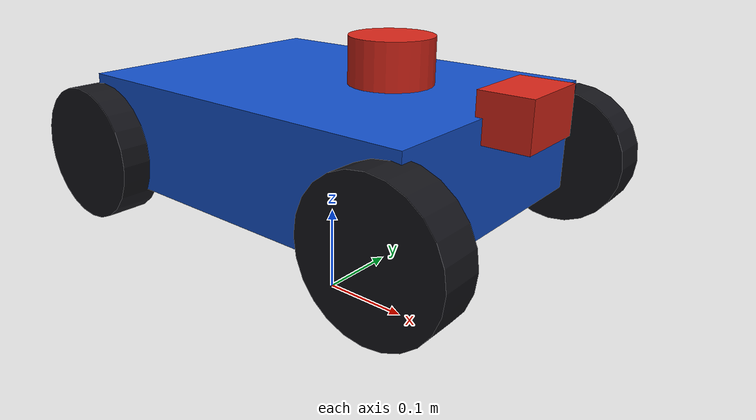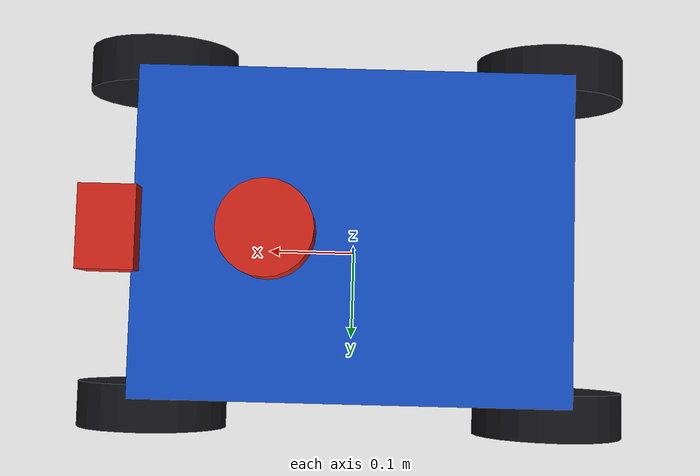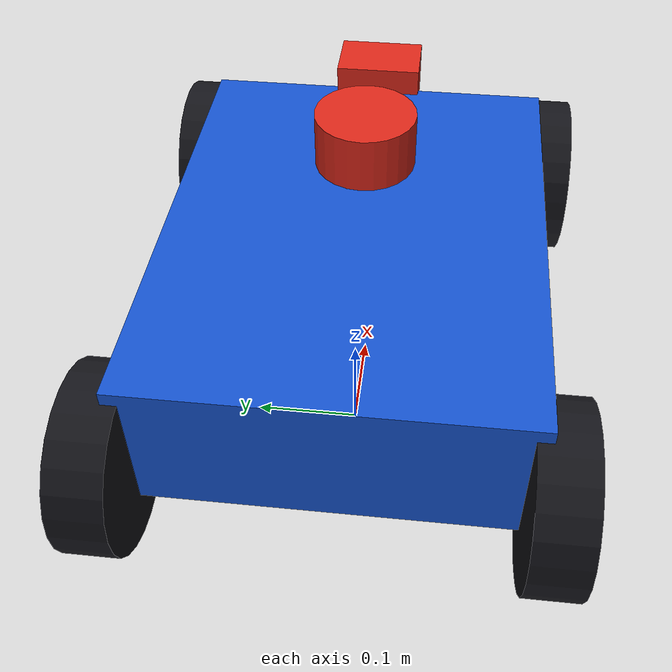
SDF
<?xml version="1.0"?>
<sdf version="1.9">
  <model name="mecamind_mecanum">
    <!-- 与轻量仿真一致，出生在地图原点，便于共用建图路线 -->
    <pose>0 0 0.10 0 0 0</pose>
    <self_collide>false</self_collide>

    <!-- 底盘：0.42 x 0.32 x 0.12 m 的盒子，质量 8kg。
         inertial 的惯量矩阵影响旋转动力学，值按均匀盒子近似估算。 -->
    <link name="base_link">
      <inertial>
        <mass>8.0</mass>
        <inertia>
          <ixx>0.08</ixx><iyy>0.12</iyy><izz>0.16</izz>
          <ixy>0</ixy><ixz>0</ixz><iyz>0</iyz>
        </inertia>
      </inertial>
      <collision name="base_collision">
        <pose>0 0 0.10 0 0 0</pose>
        <geometry><box><size>0.42 0.32 0.12</size></box></geometry>
      </collision>
      <visual name="base_visual">
        <pose>0 0 0.10 0 0 0</pose>
        <geometry><box><size>0.42 0.32 0.12</size></box></geometry>
        <material><diffuse>0.08 0.32 0.80 1</diffuse><ambient>0.05 0.20 0.50 1</ambient></material>
      </visual>
    </link>

    <link name="front_left_wheel">
      <pose>0.20 0.17 0.075 0 0 0</pose>
      <inertial><mass>0.35</mass><inertia><ixx>0.001</ixx><iyy>0.001</iyy><izz>0.001</izz></inertia></inertial>
      <visual name="visual">
        <!-- 圆柱默认轴向朝 z，绕 x 转 90°（1.5708 rad）让轮子立起来 -->
        <pose>0 0 0 1.5708 0 0</pose>
        <geometry><cylinder><radius>0.075</radius><length>0.045</length></cylinder></geometry>
        <material><diffuse>0.08 0.08 0.10 1</diffuse></material>
      </visual>
      <collision name="collision">
        <geometry><sphere><radius>0.075</radius></sphere></geometry>
        <surface><friction><ode><mu>1.0</mu><mu2>0.0</mu2><fdir1 gz:expressed_in="base_link">1 -1 0</fdir1></ode></friction></surface>
      </collision>
    </link>

    <link name="front_right_wheel">
      <pose>0.20 -0.17 0.075 0 0 0</pose>
      <inertial><mass>0.35</mass><inertia><ixx>0.001</ixx><iyy>0.001</iyy><izz>0.001</izz></inertia></inertial>
      <visual name="visual">
        <pose>0 0 0 1.5708 0 0</pose>
        <geometry><cylinder><radius>0.075</radius><length>0.045</length></cylinder></geometry>
        <material><diffuse>0.08 0.08 0.10 1</diffuse></material>
      </visual>
      <collision name="collision">
        <geometry><sphere><radius>0.075</radius></sphere></geometry>
        <surface><friction><ode><mu>1.0</mu><mu2>0.0</mu2><fdir1 gz:expressed_in="base_link">1 1 0</fdir1></ode></friction></surface>
      </collision>
    </link>

    <link name="rear_left_wheel">
      <pose>-0.20 0.17 0.075 0 0 0</pose>
      <inertial><mass>0.35</mass><inertia><ixx>0.001</ixx><iyy>0.001</iyy><izz>0.001</izz></inertia></inertial>
      <visual name="visual">
        <pose>0 0 0 1.5708 0 0</pose>
        <geometry><cylinder><radius>0.075</radius><length>0.045</length></cylinder></geometry>
        <material><diffuse>0.08 0.08 0.10 1</diffuse></material>
      </visual>
      <collision name="collision">
        <geometry><sphere><radius>0.075</radius></sphere></geometry>
        <surface><friction><ode><mu>1.0</mu><mu2>0.0</mu2><fdir1 gz:expressed_in="base_link">1 1 0</fdir1></ode></friction></surface>
      </collision>
    </link>

    <link name="rear_right_wheel">
      <pose>-0.20 -0.17 0.075 0 0 0</pose>
      <inertial><mass>0.35</mass><inertia><ixx>0.001</ixx><iyy>0.001</iyy><izz>0.001</izz></inertia></inertial>
      <visual name="visual">
        <pose>0 0 0 1.5708 0 0</pose>
        <geometry><cylinder><radius>0.075</radius><length>0.045</length></cylinder></geometry>
        <material><diffuse>0.08 0.08 0.10 1</diffuse></material>
      </visual>
      <collision name="collision">
        <geometry><sphere><radius>0.075</radius></sphere></geometry>
        <surface><friction><ode><mu>1.0</mu><mu2>0.0</mu2><fdir1 gz:expressed_in="base_link">1 -1 0</fdir1></ode></friction></surface>
      </collision>
    </link>

    <!-- 轮关节：revolute（旋转）关节，转轴沿 y（车身左右方向），
         即普通轮子的滚动轴。驱动插件通过这些关节给轮子施加转速。 -->
    <joint name="front_left_wheel_joint" type="revolute">
      <parent>base_link</parent><child>front_left_wheel</child>
      <axis><xyz>0 1 0</xyz></axis>
    </joint>
    <joint name="front_right_wheel_joint" type="revolute">
      <parent>base_link</parent><child>front_right_wheel</child>
      <axis><xyz>0 1 0</xyz></axis>
    </joint>
    <joint name="rear_left_wheel_joint" type="revolute">
      <parent>base_link</parent><child>rear_left_wheel</child>
      <axis><xyz>0 1 0</xyz></axis>
    </joint>
    <joint name="rear_right_wheel_joint" type="revolute">
      <parent>base_link</parent><child>rear_right_wheel</child>
      <axis><xyz>0 1 0</xyz></axis>
    </joint>

    <!-- 2D 激光雷达：360 束、覆盖 ±180°、量程 0.12~8m、10Hz。
         gz_frame_id 必须与 URDF 中的 TF frame 名一致（lidar_link），
         否则 SLAM 无法把激光点换算到底盘坐标系。
         noise 给测距加 0.005m 高斯噪声，模拟真实雷达。 -->
    <link name="lidar_link">
      <pose>0.08 0 0.19 0 0 0</pose>
      <visual name="visual">
        <geometry><cylinder><radius>0.045</radius><length>0.05</length></cylinder></geometry>
        <material><diffuse>0.85 0.15 0.10 1</diffuse></material>
      </visual>
      <sensor name="lidar" type="gpu_lidar">
        <topic>/scan</topic>
        <gz_frame_id>lidar_link</gz_frame_id>
        <update_rate>10</update_rate>
        <lidar>
          <scan>
            <horizontal><samples>360</samples><resolution>1</resolution><min_angle>-3.14159</min_angle><max_angle>3.14159</max_angle></horizontal>
          </scan>
          <range><min>0.12</min><max>8.0</max><resolution>0.01</resolution></range>
          <noise><type>gaussian</type><mean>0</mean><stddev>0.005</stddev></noise>
        </lidar>
        <always_on>true</always_on>
        <visualize>true</visualize>
      </sensor>
    </link>
    <!-- fixed 关节 = 刚性固连，雷达随底盘一起动，TF 是常量 -->
    <joint name="lidar_joint" type="fixed"><parent>base_link</parent><child>lidar_link</child></joint>

    <!-- IMU：50Hz 输出角速度/线加速度/姿态，可用于后续传感器融合课程 -->
    <link name="imu_link">
      <pose>0 0 0.15 0 0 0</pose>
      <sensor name="imu" type="imu">
        <topic>/imu</topic><gz_frame_id>imu_link</gz_frame_id>
        <update_rate>50</update_rate><always_on>true</always_on>
      </sensor>
    </link>
    <joint name="imu_joint" type="fixed"><parent>base_link</parent><child>imu_link</child></joint>

    <link name="camera_link">
      <pose>0.23 0 0.16 0 0 0</pose>
      <visual name="visual">
        <geometry><box><size>0.055 0.08 0.05</size></box></geometry>
        <material><diffuse>0.85 0.15 0.10 1</diffuse></material>
      </visual>
      <sensor name="camera" type="camera">
        <topic>/camera</topic>
        <gz_frame_id>camera_optical_frame</gz_frame_id>
        <update_rate>15</update_rate>
        <camera>
          <horizontal_fov>1.047</horizontal_fov>
          <image><width>640</width><height>480</height><format>R8G8B8</format></image>
          <clip><near>0.05</near><far>20</far></clip>
        </camera>
        <always_on>true</always_on>
      </sensor>
    </link>
    <joint name="camera_joint" type="fixed"><parent>base_link</parent><child>camera_link</child></joint>

    <!-- 关节状态发布插件：把四个轮关节的角度/角速度发到 /joint_states，
         经 bridge 桥到 ROS 后 RViz 可以显示轮子转动 -->
    <plugin filename="gz-sim-joint-state-publisher-system" name="gz::sim::systems::JointStatePublisher">
      <topic>/joint_states</topic>
      <joint_name>front_left_wheel_joint</joint_name>
      <joint_name>front_right_wheel_joint</joint_name>
      <joint_name>rear_left_wheel_joint</joint_name>
      <joint_name>rear_right_wheel_joint</joint_name>
    </plugin>

    <plugin filename="gz-sim-mecanum-drive-system" name="gz::sim::systems::MecanumDrive">
      <front_left_joint>front_left_wheel_joint</front_left_joint>
      <front_right_joint>front_right_wheel_joint</front_right_joint>
      <back_left_joint>rear_left_wheel_joint</back_left_joint>
      <back_right_joint>rear_right_wheel_joint</back_right_joint>
      <wheel_separation>0.34</wheel_separation>
      <wheelbase>0.40</wheelbase>
      <wheel_radius>0.075</wheel_radius>
      <topic>/cmd_vel</topic>
      <odom_topic>/odom</odom_topic>
      <tf_topic>/gz/tf</tf_topic>
      <frame_id>odom</frame_id>
      <child_frame_id>base_footprint</child_frame_id>
      <odom_publish_frequency>30</odom_publish_frequency>
      <min_acceleration>-1.5</min_acceleration>
      <max_acceleration>1.5</max_acceleration>
    </plugin>
  </model>
</sdf>
